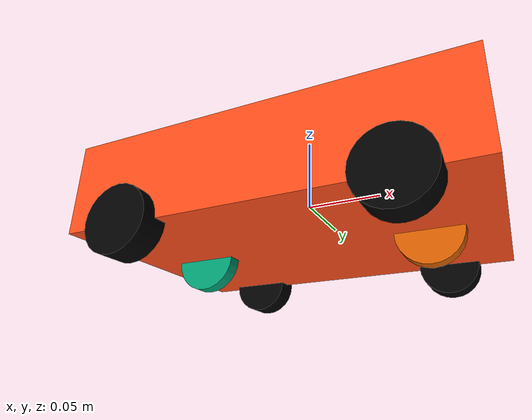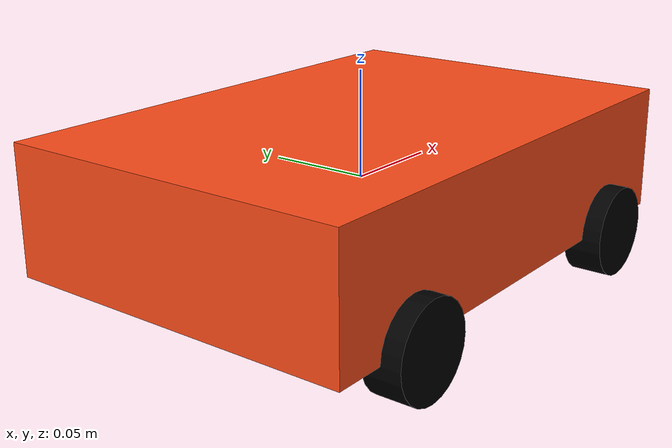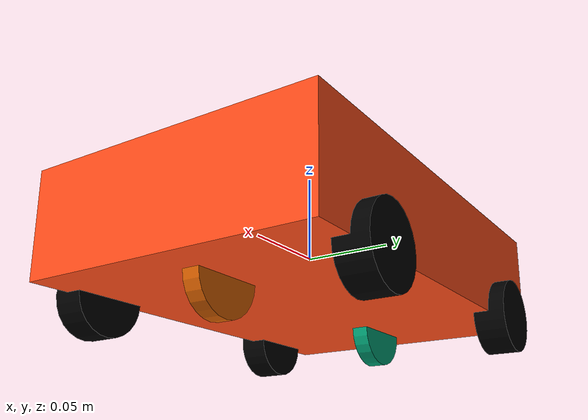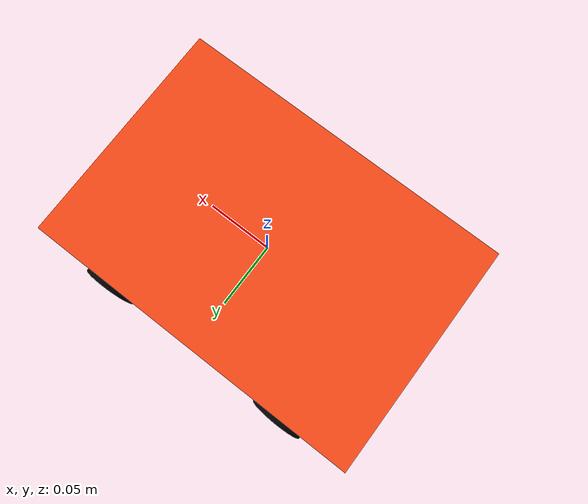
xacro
<?xml version="1.0"?>
<robot xmlns:xacro="http://www.ros.org/wiki/xacro">

  <xacro:include filename="colors.xacro" />
  <xacro:include filename="inertial_macros.xacro" />

  <xacro:property name="PI" value="3.1415926535897931"/>
  <xacro:property name="base_mass" value="1" />
  <xacro:property name="base_width" value="0.17" />
  <xacro:property name="base_length" value="0.25" />
  <xacro:property name="base_height" value="0.06" />
  <xacro:property name="wheelbase" value="0.16" />
  <xacro:property name="wheel_mass" value="0.1" />
  <xacro:property name="wheel_len" value="0.018" />
  <xacro:property name="wheel_radius" value="0.0215" />

  <link name="base_link">
    <collision>
      <origin xyz="0 0 0" rpy="0 0 0"/>
      <geometry>
        <box size="${base_length} ${base_width} ${base_height}"/>
      </geometry>
    </collision>

    <visual>
      <origin xyz="0 0 0" rpy="0 0 0"/>
      <geometry>
        <box size="${base_length} ${base_width} ${base_height}"/>
      </geometry>
      <material name="orange"/>
    </visual>

    <inertial>
      <origin xyz="0 0 0" rpy="0 0 0"/>
      <mass value="${base_mass}"/>
        <inertia
          ixx="0.000270" ixy="0.0" ixz="0.0"
          iyy="0.000270" iyz="0.0"
          izz="0.000426"/>
      </inertial>
    </link>

    <joint name="base_footprint_joint" type="fixed">
        <parent link="base_link"/>
        <child link="base_footprint"/>
        <origin xyz="0 0 0" rpy="0 0 0"/>
    </joint>

    <link name="base_footprint">
    </link>

    <!-- rear wheels -->

    <!-- virtual rear wheel -->

    <link name="virtual_rear_wheel">
      <visual>
        <origin xyz="0 0 0" rpy="${PI/2} 0 ${PI/2}"/>
        <geometry>
          <cylinder length="0.01" radius="${wheel_radius}"/>
        </geometry>
        <material name="invisible"/>
      </visual>
    </link>

    <joint name="virtual_rear_wheel_joint" type="continuous">
      <parent link="base_link"/>
      <child link="virtual_rear_wheel"/>
      <origin xyz="-${wheelbase/2} 0 -${base_height/2}" rpy="0 0 ${PI/2}"/>
      <axis xyz="1 0 0" rpy="0 0 0"/>
      <limit effort="100.0" velocity="100.0"/>
      <dynamics damping="0.2"/>
    </joint>

    <!-- rear right wheel -->

    <link name="rear_right_wheel">
      <collision>
        <origin xyz="0 0 0" rpy="${PI/2} 0 ${PI/2}"/>
        <geometry>
          <cylinder length="${wheel_len}" radius="${wheel_radius}"/>
        </geometry>
      </collision>

      <visual>
        <origin xyz="0 0 0" rpy="${PI/2} 0 ${PI/2}"/>
        <geometry>
          <cylinder length="${wheel_len}" radius="${wheel_radius}"/>
        </geometry>
        <material name="black"/>
      </visual>

      <inertial>
        <origin xyz="0 0 0" rpy="${PI/2} 0 ${PI/2}"/>
        <mass value="${wheel_mass}"/>
        <inertia
          ixx="0.000270" ixy="0.0" ixz="0.0"
          iyy="0.000270" iyz="0.0"
          izz="0.000426"/>
      </inertial>

    </link>

    <joint name="rear_right_wheel_joint" type="continuous">
      <parent link="base_link"/>
      <child link="rear_right_wheel"/>
      <origin xyz="-${wheelbase/2} ${base_width/2} -${base_height/2}" rpy="0 0 ${PI/2}"/>
      <axis xyz="1 0 0" rpy="0 0 0"/>
      <limit effort="100.0" velocity="100.0"/>
      <dynamics damping="0.2"/>
      <mimic joint="virtual_rear_wheel_joint" multiplier="1.0" offset="0.0"/>
    </joint>

    <!-- rear left wheel -->
    <link name="rear_left_wheel">
        <collision>
          <origin xyz="0 0 0" rpy="${PI/2} 0 ${PI/2}"/>
          <geometry>
            <cylinder length="${wheel_len}" radius="${wheel_radius}"/>
          </geometry>
        </collision>

        <visual>
          <origin xyz="0 0 0" rpy="${PI/2} 0 ${PI/2}"/>
          <geometry>
            <cylinder length="${wheel_len}" radius="${wheel_radius}"/>
          </geometry>
          <material name="black"/>
        </visual>

        <inertial>
          <origin xyz="0 0 0" rpy="${PI/2} 0 ${PI/2}"/>
          <mass value="${wheel_mass}"/>
          <inertia
            ixx="0.000270" ixy="0.0" ixz="0.0"
            iyy="0.000270" iyz="0.0"
            izz="0.000426"/>
        </inertial>

    </link>

    <joint name="rear_left_wheel_joint" type="continuous">
      <parent link="base_link" />
      <child link="rear_left_wheel" />
      <origin xyz="-${wheelbase/2} -${base_width/2} -${base_height/2}" rpy="0 0 ${PI/2}"/>
      <axis xyz="1 0 0" rpy="0 0 0" />
      <limit effort="100.0" velocity="100.0"/>
      <dynamics damping="0.2"/>
      <mimic joint="virtual_rear_wheel_joint" multiplier="1.0" offset="0.0"/>
    </joint>

    <!-- front wheels -->

    <!-- virtual front wheel -->

    <link name="virtual_front_wheel">
      <visual>
        <origin xyz="0 0 0" rpy="${PI/2} 0 ${PI/2}"/>
        <geometry>
          <cylinder length="0.01" radius="${wheel_radius}"/>
        </geometry>
        <material name="invisible"/>
      </visual>
    </link>

    <joint name="virtual_front_wheel_joint" type="revolute">
      <parent link="base_link"/>
      <child link="virtual_front_wheel"/>
      <origin xyz="${wheelbase/2} 0 -${base_height/2}" rpy="0 0 ${PI/2}"/>
      <axis xyz="0 0 1"/>
      <limit lower="-0.7853" upper="0.7853" effort="100.0" velocity="100.0"/>
      <dynamics damping="0.2"/>
    </joint>

    <!-- front right wheel -->

    <link name="front_right_wheel">

      <collision>
        <origin xyz="0 0 0" rpy="${PI/2} 0 ${PI/2}"/>
        <geometry>
          <cylinder length="${wheel_len}" radius="${wheel_radius}"/>
        </geometry>
      </collision>

      <visual>
        <origin xyz="0 0 0" rpy="${PI/2} 0 ${PI/2}"/>
        <geometry>
          <cylinder length="${wheel_len}" radius="${wheel_radius}"/>
        </geometry>
        <material name="black"/>
      </visual>

      <inertial>
        <origin xyz="0 0 0" rpy="${PI/2} 0 ${PI/2}"/>
        <mass value="${wheel_mass}"/>
        <inertia
          ixx="0.000270" ixy="0.0" ixz="0.0"
          iyy="0.000270" iyz="0.0"
          izz="0.000426"/>
      </inertial>
    </link>

    <joint name="front_right_wheel_joint" type="revolute">
      <parent link="base_link" />
      <child link="front_right_wheel" />
      <origin xyz="${wheelbase/2} ${base_width/2} -${base_height/2}" rpy="0 0 ${PI/2}"/>
      <axis xyz="0 0 1"/>
      <limit lower="-0.7853" upper="0.7853" effort="100.0" velocity="100.0"/>
      <dynamics damping="0.2"/>
      <mimic joint="virtual_front_wheel_joint" multiplier="1.0" offset="0.0"/>
    </joint>

    <link name="front_left_wheel">
      <collision>
        <origin xyz="0 0 0" rpy="${PI/2} 0 ${PI/2}"/>
        <geometry>
          <cylinder length="${wheel_len}" radius="${wheel_radius}"/>
        </geometry>
      </collision>

      <visual>
        <origin xyz="0 0 0" rpy="${PI/2} 0 ${PI/2}"/>
        <geometry>
          <cylinder length="${wheel_len}" radius="${wheel_radius}"/>
        </geometry>
        <material name="black"/>
      </visual>

      <inertial>
        <origin xyz="0 0 0" rpy="${PI/2} 0 ${PI/2}"/>
        <mass value="${wheel_mass}"/>
        <inertia
          ixx="0.000270" ixy="0.0" ixz="0.0"
          iyy="0.000270" iyz="0.0"
          izz="0.000426"/>
      </inertial>
    </link>

    <joint name="front_left_wheel_joint" type="revolute">
      <parent link="base_link" />
      <child link="front_left_wheel" />
      <origin xyz="${wheelbase/2} -${base_width/2} -${base_height/2}" rpy="0 0 ${PI/2}"/>
      <axis xyz="0 0 1"/>
      <limit lower="-0.7853" upper="0.7853" effort="100.0" velocity="100.0"/>
      <dynamics damping="0.2"/>
      <mimic joint="virtual_front_wheel_joint" multiplier="1.0" offset="0.0"/>
    </joint>

</robot>

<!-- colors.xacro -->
<robot xmlns:xacro="http://www.ros.org/wiki/xacro">

    <material name="grey">
        <color rgba="0.7 0.7 0.7 1"/>
    </material>

    <material name="green">
        <color rgba="0 0.6 0 1"/>
    </material>

    <material name="white">
        <color rgba="1 1 1 1"/>
    </material>

    <material name="black">
        <color rgba="0 0 0 1"/>
    </material>

    <material name="orange">
        <color rgba="1 0.3 0.1 1"/>
    </material>

</robot>
